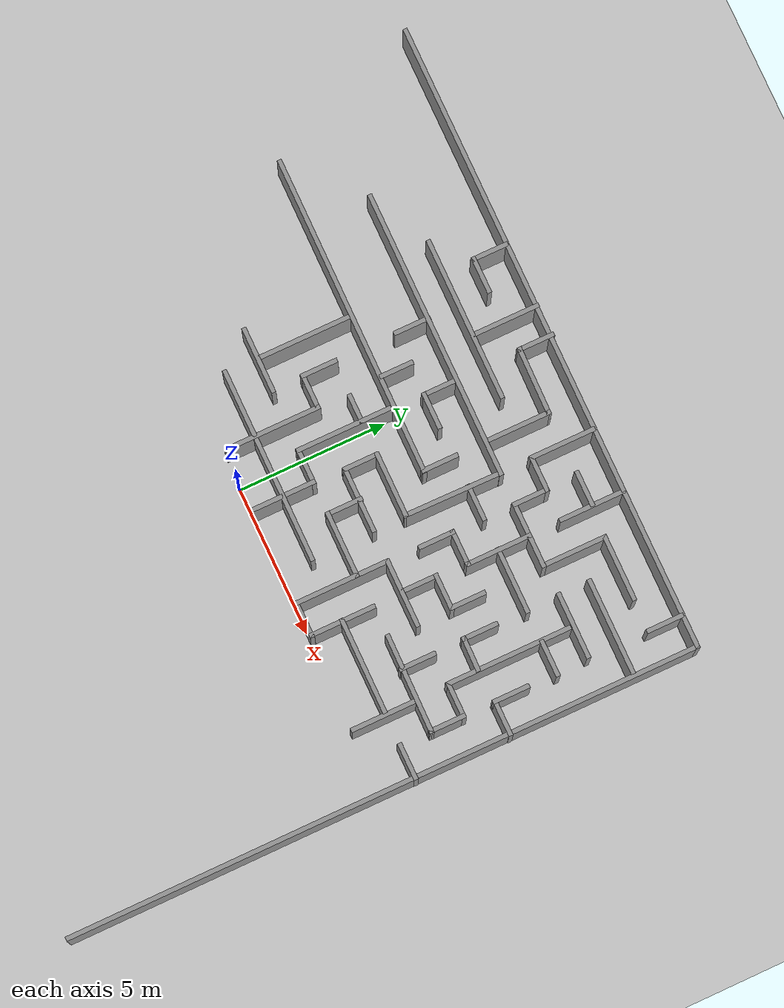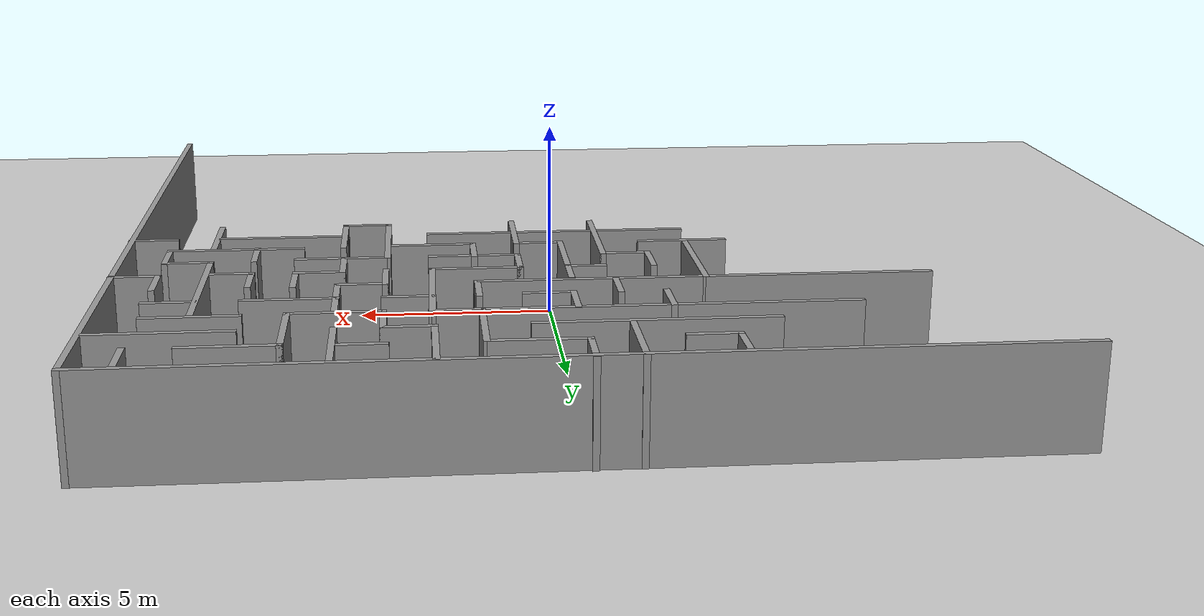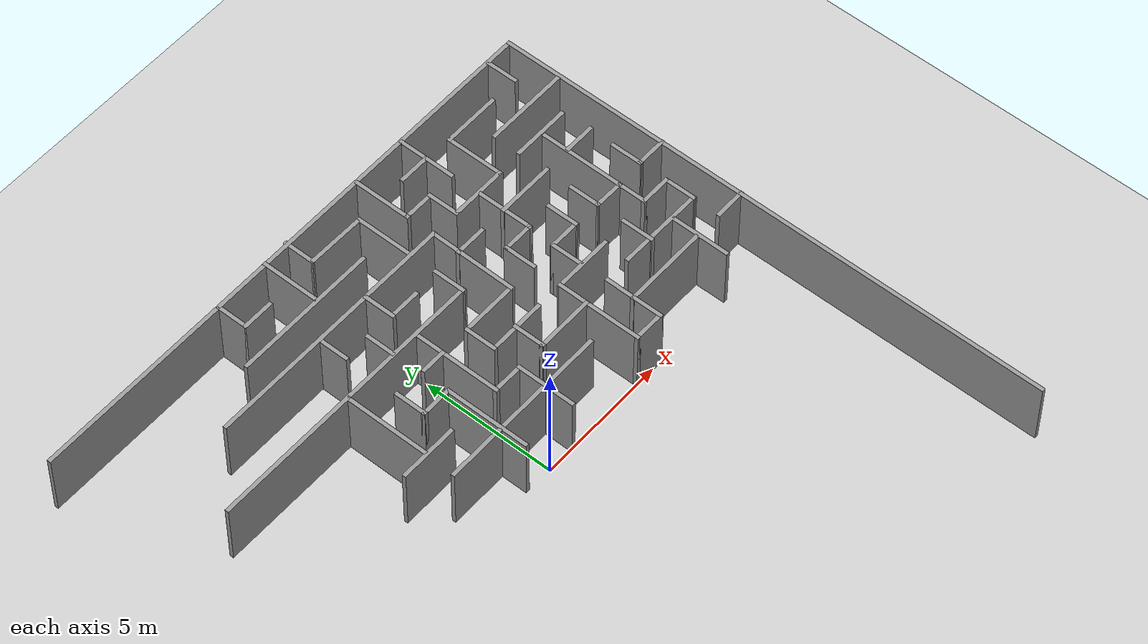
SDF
<sdf version="1.7">
 <world name="default">
  <model name="ground_plane">
   <static>1</static>
   <link name="link">
    <collision name="collision">
     <geometry><plane><normal>0 0 1</normal><size>100 100</size></plane></geometry>
     <surface><friction><ode><mu>100</mu><mu2>50</mu2></ode></friction></surface>
    </collision>
    <visual name="visual">
     <cast_shadows>0</cast_shadows>
     <geometry><plane><normal>0 0 1</normal><size>100 100</size></plane></geometry>
     <material>
      <script><uri>file://media/materials/scripts/gazebo.material</uri><name>Gazebo/Grey</name></script>
     </material>
    </visual>
   </link>
  </model>
  <model name="Maze_ej4">
   <pose>-0.00055 0.06164 0 0 -0 0</pose>
   <link name="Wall_15">
    <collision name="Wall_15_Collision">
     <geometry><box><size>21.5 0.15 2.5</size></box></geometry>
     <pose>0 0 1.25 0 -0 0</pose>
    </collision>
    <visual name="Wall_15_Visual">
     <pose>0 0 1.25 0 -0 0</pose>
     <geometry><box><size>21.5 0.15 2.5</size></box></geometry>
     <material>
      <script><uri>file://media/materials/scripts/gazebo.material</uri><name>Gazebo/Grey</name></script>
      <ambient>1 1 1 1</ambient>
     </material>
     <meta><layer>0</layer></meta>
    </visual>
    <pose>10.6667 -0.028895 0 0 -0 1.5708</pose>
   </link>
   <link name="Wall_16">
    <collision name="Wall_16_Collision">
     <geometry><box><size>21.5 0.15 2.5</size></box></geometry>
     <pose>0 0 1.25 0 -0 0</pose>
    </collision>
    <visual name="Wall_16_Visual">
     <pose>0 0 1.25 0 -0 0</pose>
     <geometry><box><size>21.5 0.15 2.5</size></box></geometry>
     <material>
      <script><uri>file://media/materials/scripts/gazebo.material</uri><name>Gazebo/Grey</name></script>
      <ambient>1 1 1 1</ambient>
     </material>
     <meta><layer>0</layer></meta>
    </visual>
    <pose>-0.008328 10.6461 0 0 -0 3.14159</pose>
   </link>
   <link name="Wall_215">
    <collision name="Wall_215_Collision">
     <geometry><box><size>6.57519 0.15 2.5</size></box></geometry>
     <pose>0 0 1.25 0 -0 0</pose>
    </collision>
    <visual name="Wall_215_Visual">
     <pose>0 0 1.25 0 -0 0</pose>
     <geometry><box><size>6.57519 0.15 2.5</size></box></geometry>
     <material>
      <script><uri>file://media/materials/scripts/gazebo.material</uri><name>Gazebo/Grey</name></script>
      <ambient>1 1 1 1</ambient>
     </material>
     <meta><layer>0</layer></meta>
    </visual>
    <pose>-0.029528 0.994018 0 0 -0 0</pose>
   </link>
   <link name="Wall_224">
    <collision name="Wall_224_Collision">
     <geometry><box><size>1.25 0.15 2.5</size></box></geometry>
     <pose>0 0 1.25 0 -0 0</pose>
    </collision>
    <visual name="Wall_224_Visual">
     <pose>0 0 1.25 0 -0 0</pose>
     <geometry><box><size>1.25 0.15 2.5</size></box></geometry>
     <material>
      <script><uri>file://media/materials/scripts/gazebo.material</uri><name>Gazebo/Grey</name></script>
      <ambient>1 1 1 1</ambient>
     </material>
     <meta><layer>0</layer></meta>
    </visual>
    <pose>-2.1319 3.69402 0 0 -0 -1.5708</pose>
   </link>
   <link name="Wall_225">
    <collision name="Wall_225_Collision">
     <geometry><box><size>1.25 0.15 2.5</size></box></geometry>
     <pose>0 0 1.25 0 -0 0</pose>
    </collision>
    <visual name="Wall_225_Visual">
     <pose>0 0 1.25 0 -0 0</pose>
     <geometry><box><size>1.25 0.15 2.5</size></box></geometry>
     <material>
      <script><uri>file://media/materials/scripts/gazebo.material</uri><name>Gazebo/Grey</name></script>
      <ambient>1 1 1 1</ambient>
     </material>
     <meta><layer>0</layer></meta>
    </visual>
    <pose>-1.5819 3.14402 0 0 -0 0</pose>
   </link>
   <link name="Wall_226">
    <collision name="Wall_226_Collision">
     <geometry><box><size>3.25 0.15 2.5</size></box></geometry>
     <pose>0 0 1.25 0 -0 0</pose>
    </collision>
    <visual name="Wall_226_Visual">
     <pose>0 0 1.25 0 -0 0</pose>
     <geometry><box><size>3.25 0.15 2.5</size></box></geometry>
     <material>
      <script><uri>file://media/materials/scripts/gazebo.material</uri><name>Gazebo/Grey</name></script>
      <ambient>1 1 1 1</ambient>
     </material>
     <meta><layer>0</layer></meta>
    </visual>
    <pose>-1.0319 1.59402 0 0 -0 -1.5708</pose>
   </link>
   <link name="Wall_228">
    <collision name="Wall_228_Collision">
     <geometry><box><size>2.25 0.15 2.5</size></box></geometry>
     <pose>0 0 1.25 0 -0 0</pose>
    </collision>
    <visual name="Wall_228_Visual">
     <pose>0 0 1.25 0 -0 0</pose>
     <geometry><box><size>2.25 0.15 2.5</size></box></geometry>
     <material>
      <script><uri>file://media/materials/scripts/gazebo.material</uri><name>Gazebo/Grey</name></script>
      <ambient>1 1 1 1</ambient>
     </material>
     <meta><layer>0</layer></meta>
    </visual>
    <pose>1.03065 0.98723 0 0 -0 1.5708</pose>
   </link>
   <link name="Wall_229">
    <collision name="Wall_229_Collision">
     <geometry><box><size>1.25 0.15 2.5</size></box></geometry>
     <pose>0 0 1.25 0 -0 0</pose>
    </collision>
    <visual name="Wall_229_Visual">
     <pose>0 0 1.25 0 -0 0</pose>
     <geometry><box><size>1.25 0.15 2.5</size></box></geometry>
     <material>
      <script><uri>file://media/materials/scripts/gazebo.material</uri><name>Gazebo/Grey</name></script>
      <ambient>1 1 1 1</ambient>
     </material>
     <meta><layer>0</layer></meta>
    </visual>
    <pose>0.480653 2.03723 0 0 -0 3.14159</pose>
   </link>
   <link name="Wall_230">
    <collision name="Wall_230_Collision">
     <geometry><box><size>3.25 0.15 2.5</size></box></geometry>
     <pose>0 0 1.25 0 -0 0</pose>
    </collision>
    <visual name="Wall_230_Visual">
     <pose>0 0 1.25 0 -0 0</pose>
     <geometry><box><size>3.25 0.15 2.5</size></box></geometry>
     <material>
      <script><uri>file://media/materials/scripts/gazebo.material</uri><name>Gazebo/Grey</name></script>
      <ambient>1 1 1 1</ambient>
     </material>
     <meta><layer>0</layer></meta>
    </visual>
    <pose>-0.069347 3.58723 0 0 -0 1.5708</pose>
   </link>
   <link name="Wall_232">
    <collision name="Wall_232_Collision">
     <geometry><box><size>1.25 0.15 2.5</size></box></geometry>
     <pose>0 0 1.25 0 -0 0</pose>
    </collision>
    <visual name="Wall_232_Visual">
     <pose>0 0 1.25 0 -0 0</pose>
     <geometry><box><size>1.25 0.15 2.5</size></box></geometry>
     <material>
      <script><uri>file://media/materials/scripts/gazebo.material</uri><name>Gazebo/Grey</name></script>
      <ambient>1 1 1 1</ambient>
     </material>
     <meta><layer>0</layer></meta>
    </visual>
    <pose>9.58066 4.80647 0 0 -0 -1.5708</pose>
   </link>
   <link name="Wall_233">
    <collision name="Wall_233_Collision">
     <geometry><box><size>1.25 0.15 2.5</size></box></geometry>
     <pose>0 0 1.25 0 -0 0</pose>
    </collision>
    <visual name="Wall_233_Visual">
     <pose>0 0 1.25 0 -0 0</pose>
     <geometry><box><size>1.25 0.15 2.5</size></box></geometry>
     <material>
      <script><uri>file://media/materials/scripts/gazebo.material</uri><name>Gazebo/Grey</name></script>
      <ambient>1 1 1 1</ambient>
     </material>
     <meta><layer>0</layer></meta>
    </visual>
    <pose>10.1307 4.25647 0 0 -0 0</pose>
   </link>
   <link name="Wall_235">
    <collision name="Wall_235_Collision">
     <geometry><box><size>1.25 0.15 2.5</size></box></geometry>
     <pose>0 0 1.25 0 -0 0</pose>
    </collision>
    <visual name="Wall_235_Visual">
     <pose>0 0 1.25 0 -0 0</pose>
     <geometry><box><size>1.25 0.15 2.5</size></box></geometry>
     <material>
      <script><uri>file://media/materials/scripts/gazebo.material</uri><name>Gazebo/Grey</name></script>
      <ambient>1 1 1 1</ambient>
     </material>
     <meta><layer>0</layer></meta>
    </visual>
    <pose>10.1307 1.03379 0 0 -0 0</pose>
   </link>
   <link name="Wall_237">
    <collision name="Wall_237_Collision">
     <geometry><box><size>3.25 0.15 2.5</size></box></geometry>
     <pose>0 0 1.25 0 -0 0</pose>
    </collision>
    <visual name="Wall_237_Visual">
     <pose>0 0 1.25 0 -0 0</pose>
     <geometry><box><size>3.25 0.15 2.5</size></box></geometry>
     <material>
      <script><uri>file://media/materials/scripts/gazebo.material</uri><name>Gazebo/Grey</name></script>
      <ambient>1 1 1 1</ambient>
     </material>
     <meta><layer>0</layer></meta>
    </visual>
    <pose>-3.21257 3.7588 0 0 -0 -1.5708</pose>
   </link>
   <link name="Wall_239">
    <collision name="Wall_239_Collision">
     <geometry><box><size>2.25 0.15 2.5</size></box></geometry>
     <pose>0 0 1.25 0 -0 0</pose>
    </collision>
    <visual name="Wall_239_Visual">
     <pose>0 0 1.25 0 -0 0</pose>
     <geometry><box><size>2.25 0.15 2.5</size></box></geometry>
     <material>
      <script><uri>file://media/materials/scripts/gazebo.material</uri><name>Gazebo/Grey</name></script>
      <ambient>1 1 1 1</ambient>
     </material>
     <meta><layer>0</layer></meta>
    </visual>
    <pose>-3.15011 2.09857 0 0 -0 3.14159</pose>
   </link>
   <link name="Wall_247">
    <collision name="Wall_247_Collision">
     <geometry><box><size>3.25 0.15 2.5</size></box></geometry>
     <pose>0 0 1.25 0 -0 0</pose>
    </collision>
    <visual name="Wall_247_Visual">
     <pose>0 0 1.25 0 -0 0</pose>
     <geometry><box><size>3.25 0.15 2.5</size></box></geometry>
     <material>
      <script><uri>file://media/materials/scripts/gazebo.material</uri><name>Gazebo/Grey</name></script>
      <ambient>1 1 1 1</ambient>
     </material>
     <meta><layer>0</layer></meta>
    </visual>
    <pose>6.87155 1.03379 0 0 -0 0</pose>
   </link>
   <link name="Wall_252">
    <collision name="Wall_252_Collision">
     <geometry><box><size>10.8613 0.15 2.5</size></box></geometry>
     <pose>0 0 1.25 0 -0 0</pose>
    </collision>
    <visual name="Wall_252_Visual">
     <pose>0 0 1.25 0 -0 0</pose>
     <geometry><box><size>10.8613 0.15 2.5</size></box></geometry>
     <material>
      <script><uri>file://media/materials/scripts/gazebo.material</uri><name>Gazebo/Grey</name></script>
      <ambient>1 1 1 1</ambient>
     </material>
     <meta><layer>0</layer></meta>
    </visual>
    <pose>-3.19672 5.30879 0 0 -0 -0.002967</pose>
   </link>
   <link name="Wall_253">
    <collision name="Wall_253_Collision">
     <geometry><box><size>1.25 0.15 2.5</size></box></geometry>
     <pose>0 0 1.25 0 -0 0</pose>
    </collision>
    <visual name="Wall_253_Visual">
     <pose>0 0 1.25 0 -0 0</pose>
     <geometry><box><size>1.25 0.15 2.5</size></box></geometry>
     <material>
      <script><uri>file://media/materials/scripts/gazebo.material</uri><name>Gazebo/Grey</name></script>
      <ambient>1 1 1 1</ambient>
     </material>
     <meta><layer>0</layer></meta>
    </visual>
    <pose>2.14301 5.8429 0 0 -0 1.5708</pose>
   </link>
   <link name="Wall_255">
    <collision name="Wall_255_Collision">
     <geometry><box><size>3.36038 0.15 2.5</size></box></geometry>
     <pose>0 0 1.25 0 -0 0</pose>
    </collision>
    <visual name="Wall_255_Visual">
     <pose>0 0 1.25 0 -0 0</pose>
     <geometry><box><size>3.36038 0.15 2.5</size></box></geometry>
     <material>
      <script><uri>file://media/materials/scripts/gazebo.material</uri><name>Gazebo/Grey</name></script>
      <ambient>1 1 1 1</ambient>
     </material>
     <meta><layer>0</layer></meta>
    </visual>
    <pose>7.97555 2.09857 0 0 -0 -0.009901</pose>
   </link>
   <link name="Wall_256">
    <collision name="Wall_256_Collision">
     <geometry><box><size>1.25 0.15 2.5</size></box></geometry>
     <pose>0 0 1.25 0 -0 0</pose>
    </collision>
    <visual name="Wall_256_Visual">
     <pose>0 0 1.25 0 -0 0</pose>
     <geometry><box><size>1.25 0.15 2.5</size></box></geometry>
     <material>
      <script><uri>file://media/materials/scripts/gazebo.material</uri><name>Gazebo/Grey</name></script>
      <ambient>1 1 1 1</ambient>
     </material>
     <meta><layer>0</layer></meta>
    </visual>
    <pose>9.58066 2.63268 0 0 -0 1.5708</pose>
   </link>
   <link name="Wall_257">
    <collision name="Wall_257_Collision">
     <geometry><box><size>1.25 0.15 2.5</size></box></geometry>
     <pose>0 0 1.25 0 -0 0</pose>
    </collision>
    <visual name="Wall_257_Visual">
     <pose>0 0 1.25 0 -0 0</pose>
     <geometry><box><size>1.25 0.15 2.5</size></box></geometry>
     <material>
      <script><uri>file://media/materials/scripts/gazebo.material</uri><name>Gazebo/Grey</name></script>
      <ambient>1 1 1 1</ambient>
     </material>
     <meta><layer>0</layer></meta>
    </visual>
    <pose>9.03066 3.18268 0 0 -0 3.14159</pose>
   </link>
   <link name="Wall_258">
    <collision name="Wall_258_Collision">
     <geometry><box><size>4.25 0.15 2.5</size></box></geometry>
     <pose>0 0 1.25 0 -0 0</pose>
    </collision>
    <visual name="Wall_258_Visual">
     <pose>0 0 1.25 0 -0 0</pose>
     <geometry><box><size>4.25 0.15 2.5</size></box></geometry>
     <material>
      <script><uri>file://media/materials/scripts/gazebo.material</uri><name>Gazebo/Grey</name></script>
      <ambient>1 1 1 1</ambient>
     </material>
     <meta><layer>0</layer></meta>
    </visual>
    <pose>8.48066 5.23268 0 0 -0 1.5708</pose>
   </link>
   <link name="Wall_260">
    <collision name="Wall_260_Collision">
     <geometry><box><size>1.25 0.15 2.5</size></box></geometry>
     <pose>0 0 1.25 0 -0 0</pose>
    </collision>
    <visual name="Wall_260_Visual">
     <pose>0 0 1.25 0 -0 0</pose>
     <geometry><box><size>1.25 0.15 2.5</size></box></geometry>
     <material>
      <script><uri>file://media/materials/scripts/gazebo.material</uri><name>Gazebo/Grey</name></script>
      <ambient>1 1 1 1</ambient>
     </material>
     <meta><layer>0</layer></meta>
    </visual>
    <pose>9.07834 6.35768 0 0 -0 3.14159</pose>
   </link>
   <link name="Wall_262">
    <collision name="Wall_262_Collision">
     <geometry><box><size>2.25 0.15 2.5</size></box></geometry>
     <pose>0 0 1.25 0 -0 0</pose>
    </collision>
    <visual name="Wall_262_Visual">
     <pose>0 0 1.25 0 -0 0</pose>
     <geometry><box><size>2.25 0.15 2.5</size></box></geometry>
     <material>
      <script><uri>file://media/materials/scripts/gazebo.material</uri><name>Gazebo/Grey</name></script>
      <ambient>1 1 1 1</ambient>
     </material>
     <meta><layer>0</layer></meta>
    </visual>
    <pose>8.46932 7.45424 0 0 -0 0</pose>
   </link>
   <link name="Wall_264">
    <collision name="Wall_264_Collision">
     <geometry><box><size>2.25 0.15 2.5</size></box></geometry>
     <pose>0 0 1.25 0 -0 0</pose>
    </collision>
    <visual name="Wall_264_Visual">
     <pose>0 0 1.25 0 -0 0</pose>
     <geometry><box><size>2.25 0.15 2.5</size></box></geometry>
     <material>
      <script><uri>file://media/materials/scripts/gazebo.material</uri><name>Gazebo/Grey</name></script>
      <ambient>1 1 1 1</ambient>
     </material>
     <meta><layer>0</layer></meta>
    </visual>
    <pose>8.53177 0.969109 0 0 -0 -1.5708</pose>
   </link>
   <link name="Wall_266">
    <collision name="Wall_266_Collision">
     <geometry><box><size>1.25 0.15 2.5</size></box></geometry>
     <pose>0 0 1.25 0 -0 0</pose>
    </collision>
    <visual name="Wall_266_Visual">
     <pose>0 0 1.25 0 -0 0</pose>
     <geometry><box><size>1.25 0.15 2.5</size></box></geometry>
     <material>
      <script><uri>file://media/materials/scripts/gazebo.material</uri><name>Gazebo/Grey</name></script>
      <ambient>1 1 1 1</ambient>
     </material>
     <meta><layer>0</layer></meta>
    </visual>
    <pose>7.4511 2.61335 0 0 -0 -1.5708</pose>
   </link>
   <link name="Wall_268">
    <collision name="Wall_268_Collision">
     <geometry><box><size>2.25 0.15 2.5</size></box></geometry>
     <pose>0 0 1.25 0 -0 0</pose>
    </collision>
    <visual name="Wall_268_Visual">
     <pose>0 0 1.25 0 -0 0</pose>
     <geometry><box><size>2.25 0.15 2.5</size></box></geometry>
     <material>
      <script><uri>file://media/materials/scripts/gazebo.material</uri><name>Gazebo/Grey</name></script>
      <ambient>1 1 1 1</ambient>
     </material>
     <meta><layer>0</layer></meta>
    </visual>
    <pose>5.33744 1.03268 0 0 -0 -1.5708</pose>
   </link>
   <link name="Wall_269">
    <collision name="Wall_269_Collision">
     <geometry><box><size>1.25 0.15 2.5</size></box></geometry>
     <pose>0 0 1.25 0 -0 0</pose>
    </collision>
    <visual name="Wall_269_Visual">
     <pose>0 0 1.25 0 -0 0</pose>
     <geometry><box><size>1.25 0.15 2.5</size></box></geometry>
     <material>
      <script><uri>file://media/materials/scripts/gazebo.material</uri><name>Gazebo/Grey</name></script>
      <ambient>1 1 1 1</ambient>
     </material>
     <meta><layer>0</layer></meta>
    </visual>
    <pose>4.78744 -0.017322 0 0 -0 3.14159</pose>
   </link>
   <link name="Wall_270">
    <collision name="Wall_270_Collision">
     <geometry><box><size>3.25 0.15 2.5</size></box></geometry>
     <pose>0 0 1.25 0 -0 0</pose>
    </collision>
    <visual name="Wall_270_Visual">
     <pose>0 0 1.25 0 -0 0</pose>
     <geometry><box><size>3.25 0.15 2.5</size></box></geometry>
     <material>
      <script><uri>file://media/materials/scripts/gazebo.material</uri><name>Gazebo/Grey</name></script>
      <ambient>1 1 1 1</ambient>
     </material>
     <meta><layer>0</layer></meta>
    </visual>
    <pose>4.23744 1.53268 0 0 -0 1.5708</pose>
   </link>
   <link name="Wall_271">
    <collision name="Wall_271_Collision">
     <geometry><box><size>2.33067 0.15 2.5</size></box></geometry>
     <pose>0 0 1.25 0 -0 0</pose>
    </collision>
    <visual name="Wall_271_Visual">
     <pose>0 0 1.25 0 -0 0</pose>
     <geometry><box><size>2.33067 0.15 2.5</size></box></geometry>
     <material>
      <script><uri>file://media/materials/scripts/gazebo.material</uri><name>Gazebo/Grey</name></script>
      <ambient>1 1 1 1</ambient>
     </material>
     <meta><layer>0</layer></meta>
    </visual>
    <pose>5.32778 3.08328 0 0 -0 0.000554</pose>
   </link>
   <link name="Wall_275">
    <collision name="Wall_275_Collision">
     <geometry><box><size>1.25 0.15 2.5</size></box></geometry>
     <pose>0 0 1.25 0 -0 0</pose>
    </collision>
    <visual name="Wall_275_Visual">
     <pose>0 0 1.25 0 -0 0</pose>
     <geometry><box><size>1.25 0.15 2.5</size></box></geometry>
     <material>
      <script><uri>file://media/materials/scripts/gazebo.material</uri><name>Gazebo/Grey</name></script>
      <ambient>1 1 1 1</ambient>
     </material>
     <meta><layer>0</layer></meta>
    </visual>
    <pose>6.38633 4.80647 0 0 -0 -1.5708</pose>
   </link>
   <link name="Wall_276">
    <collision name="Wall_276_Collision">
     <geometry><box><size>1.25 0.15 2.5</size></box></geometry>
     <pose>0 0 1.25 0 -0 0</pose>
    </collision>
    <visual name="Wall_276_Visual">
     <pose>0 0 1.25 0 -0 0</pose>
     <geometry><box><size>1.25 0.15 2.5</size></box></geometry>
     <material>
      <script><uri>file://media/materials/scripts/gazebo.material</uri><name>Gazebo/Grey</name></script>
      <ambient>1 1 1 1</ambient>
     </material>
     <meta><layer>0</layer></meta>
    </visual>
    <pose>5.83633 4.25647 0 0 -0 3.14159</pose>
   </link>
   <link name="Wall_277">
    <collision name="Wall_277_Collision">
     <geometry><box><size>1.25 0.15 2.5</size></box></geometry>
     <pose>0 0 1.25 0 -0 0</pose>
    </collision>
    <visual name="Wall_277_Visual">
     <pose>0 0 1.25 0 -0 0</pose>
     <geometry><box><size>1.25 0.15 2.5</size></box></geometry>
     <material>
      <script><uri>file://media/materials/scripts/gazebo.material</uri><name>Gazebo/Grey</name></script>
      <ambient>1 1 1 1</ambient>
     </material>
     <meta><layer>0</layer></meta>
    </visual>
    <pose>5.28633 3.70647 0 0 -0 -1.5708</pose>
   </link>
   <link name="Wall_279">
    <collision name="Wall_279_Collision">
     <geometry><box><size>1.23067 0.15 2.5</size></box></geometry>
     <pose>0 0 1.25 0 -0 0</pose>
    </collision>
    <visual name="Wall_279_Visual">
     <pose>0 0 1.25 0 -0 0</pose>
     <geometry><box><size>1.23067 0.15 2.5</size></box></geometry>
     <material>
      <script><uri>file://media/materials/scripts/gazebo.material</uri><name>Gazebo/Grey</name></script>
      <ambient>1 1 1 1</ambient>
     </material>
     <meta><layer>0</layer></meta>
    </visual>
    <pose>7.41932 4.75257 0 0 -0 -1.5708</pose>
   </link>
   <link name="Wall_280">
    <collision name="Wall_280_Collision">
     <geometry><box><size>1.18661 0.15 2.5</size></box></geometry>
     <pose>0 0 1.25 0 -0 0</pose>
    </collision>
    <visual name="Wall_280_Visual">
     <pose>0 0 1.25 0 -0 0</pose>
     <geometry><box><size>1.18661 0.15 2.5</size></box></geometry>
     <material>
      <script><uri>file://media/materials/scripts/gazebo.material</uri><name>Gazebo/Grey</name></script>
      <ambient>1 1 1 1</ambient>
     </material>
     <meta><layer>0</layer></meta>
    </visual>
    <pose>7.93753 4.20257 0 0 -0 -0.018648</pose>
   </link>
   <link name="Wall_282">
    <collision name="Wall_282_Collision">
     <geometry><box><size>3.3768 0.15 2.5</size></box></geometry>
     <pose>0 0 1.25 0 -0 0</pose>
    </collision>
    <visual name="Wall_282_Visual">
     <pose>0 0 1.25 0 -0 0</pose>
     <geometry><box><size>3.3768 0.15 2.5</size></box></geometry>
     <material>
      <script><uri>file://media/materials/scripts/gazebo.material</uri><name>Gazebo/Grey</name></script>
      <ambient>1 1 1 1</ambient>
     </material>
     <meta><layer>0</layer></meta>
    </visual>
    <pose>3.19597 5.8094 0 0 -0 -1.58311</pose>
   </link>
   <link name="Wall_283">
    <collision name="Wall_283_Collision">
     <geometry><box><size>2.25 0.15 2.5</size></box></geometry>
     <pose>0 0 1.25 0 -0 0</pose>
    </collision>
    <visual name="Wall_283_Visual">
     <pose>0 0 1.25 0 -0 0</pose>
     <geometry><box><size>2.25 0.15 2.5</size></box></geometry>
     <material>
      <script><uri>file://media/materials/scripts/gazebo.material</uri><name>Gazebo/Grey</name></script>
      <ambient>1 1 1 1</ambient>
     </material>
     <meta><layer>0</layer></meta>
    </visual>
    <pose>2.1261 4.19634 0 0 -0 3.14159</pose>
   </link>
   <link name="Wall_284">
    <collision name="Wall_284_Collision">
     <geometry><box><size>1.25 0.15 2.5</size></box></geometry>
     <pose>0 0 1.25 0 -0 0</pose>
    </collision>
    <visual name="Wall_284_Visual">
     <pose>0 0 1.25 0 -0 0</pose>
     <geometry><box><size>1.25 0.15 2.5</size></box></geometry>
     <material>
      <script><uri>file://media/materials/scripts/gazebo.material</uri><name>Gazebo/Grey</name></script>
      <ambient>1 1 1 1</ambient>
     </material>
     <meta><layer>0</layer></meta>
    </visual>
    <pose>1.0761 3.64634 0 0 -0 -1.5708</pose>
   </link>
   <link name="Wall_285">
    <collision name="Wall_285_Collision">
     <geometry><box><size>2.25 0.15 2.5</size></box></geometry>
     <pose>0 0 1.25 0 -0 0</pose>
    </collision>
    <visual name="Wall_285_Visual">
     <pose>0 0 1.25 0 -0 0</pose>
     <geometry><box><size>2.25 0.15 2.5</size></box></geometry>
     <material>
      <script><uri>file://media/materials/scripts/gazebo.material</uri><name>Gazebo/Grey</name></script>
      <ambient>1 1 1 1</ambient>
     </material>
     <meta><layer>0</layer></meta>
    </visual>
    <pose>2.1261 3.09634 0 0 -0 0</pose>
   </link>
   <link name="Wall_287">
    <collision name="Wall_287_Collision">
     <geometry><box><size>1.25 0.15 2.5</size></box></geometry>
     <pose>0 0 1.25 0 -0 0</pose>
    </collision>
    <visual name="Wall_287_Visual">
     <pose>0 0 1.25 0 -0 0</pose>
     <geometry><box><size>1.25 0.15 2.5</size></box></geometry>
     <material>
      <script><uri>file://media/materials/scripts/gazebo.material</uri><name>Gazebo/Grey</name></script>
      <ambient>1 1 1 1</ambient>
     </material>
     <meta><layer>0</layer></meta>
    </visual>
    <pose>2.12722 2.58156 0 0 -0 -1.5708</pose>
   </link>
   <link name="Wall_288">
    <collision name="Wall_288_Collision">
     <geometry><box><size>2.25 0.15 2.5</size></box></geometry>
     <pose>0 0 1.25 0 -0 0</pose>
    </collision>
    <visual name="Wall_288_Visual">
     <pose>0 0 1.25 0 -0 0</pose>
     <geometry><box><size>2.25 0.15 2.5</size></box></geometry>
     <material>
      <script><uri>file://media/materials/scripts/gazebo.material</uri><name>Gazebo/Grey</name></script>
      <ambient>1 1 1 1</ambient>
     </material>
     <meta><layer>0</layer></meta>
    </visual>
    <pose>3.17722 2.03156 0 0 -0 0</pose>
   </link>
   <link name="Wall_291">
    <collision name="Wall_291_Collision">
     <geometry><box><size>1 0.15 2.5</size></box></geometry>
     <pose>0 0 1.25 0 -0 0</pose>
    </collision>
    <visual name="Wall_291_Visual">
     <pose>0 0 1.25 0 -0 0</pose>
     <geometry><box><size>1 0.15 2.5</size></box></geometry>
     <material>
      <script><uri>file://media/materials/scripts/gazebo.material</uri><name>Gazebo/Grey</name></script>
      <ambient>1 1 1 1</ambient>
     </material>
     <meta><layer>0</layer></meta>
    </visual>
    <pose>-0.503363 4.19634 0 0 -0 0</pose>
   </link>
   <link name="Wall_293">
    <collision name="Wall_293_Collision">
     <geometry><box><size>1.15121 0.15 2.5</size></box></geometry>
     <pose>0 0 1.25 0 -0 0</pose>
    </collision>
    <visual name="Wall_293_Visual">
     <pose>0 0 1.25 0 -0 0</pose>
     <geometry><box><size>1.15121 0.15 2.5</size></box></geometry>
     <material>
      <script><uri>file://media/materials/scripts/gazebo.material</uri><name>Gazebo/Grey</name></script>
      <ambient>1 1 1 1</ambient>
     </material>
     <meta><layer>0</layer></meta>
    </visual>
    <pose>-1.08301 5.85708 0 0 -0 -1.5708</pose>
   </link>
   <link name="Wall_317">
    <collision name="Wall_317_Collision">
     <geometry><box><size>5.5 0.15 2.5</size></box></geometry>
     <pose>0 0 1.25 0 -0 0</pose>
    </collision>
    <visual name="Wall_317_Visual">
     <pose>0 0 1.25 0 -0 0</pose>
     <geometry><box><size>5.5 0.15 2.5</size></box></geometry>
     <material>
      <script><uri>file://media/materials/scripts/gazebo.material</uri><name>Gazebo/Grey</name></script>
      <ambient>1 1 1 1</ambient>
     </material>
     <meta><layer>0</layer></meta>
    </visual>
    <pose>-1.61824 8.47134 0 0 -0 0</pose>
   </link>
   <link name="Wall_835">
    <collision name="Wall_835_Collision">
     <geometry><box><size>2.25 0.15 2.5</size></box></geometry>
     <pose>0 0 1.25 0 -0 0</pose>
    </collision>
    <visual name="Wall_835_Visual">
     <pose>0 0 1.25 0 -0 0</pose>
     <geometry><box><size>2.25 0.15 2.5</size></box></geometry>
     <material>
      <script><uri>file://media/materials/scripts/gazebo.material</uri><name>Gazebo/Grey</name></script>
      <ambient>1 1 1 1</ambient>
     </material>
     <meta><layer>0</layer></meta>
    </visual>
    <pose>-1.06235 9.61459 0 0 -0 -1.5708</pose>
   </link>
   <link name="Wall_843">
    <collision name="Wall_843_Collision">
     <geometry><box><size>9.75 0.15 2.5</size></box></geometry>
     <pose>0 0 1.25 0 -0 0</pose>
    </collision>
    <visual name="Wall_843_Visual">
     <pose>0 0 1.25 0 -0 0</pose>
     <geometry><box><size>9.75 0.15 2.5</size></box></geometry>
     <material>
      <script><uri>file://media/materials/scripts/gazebo.material</uri><name>Gazebo/Grey</name></script>
      <ambient>1 1 1 1</ambient>
     </material>
     <meta><layer>0</layer></meta>
    </visual>
    <pose>-1.57092 7.42246 0 0 -0 3.14159</pose>
   </link>
   <link name="Wall_852">
    <collision name="Wall_852_Collision">
     <geometry><box><size>1.25 0.15 2.5</size></box></geometry>
     <pose>0 0 1.25 0 -0 0</pose>
    </collision>
    <visual name="Wall_852_Visual">
     <pose>0 0 1.25 0 -0 0</pose>
     <geometry><box><size>1.25 0.15 2.5</size></box></geometry>
     <material>
      <script><uri>file://media/materials/scripts/gazebo.material</uri><name>Gazebo/Grey</name></script>
      <ambient>1 1 1 1</ambient>
     </material>
     <meta><layer>0</layer></meta>
    </visual>
    <pose>-2.13408 6.88484 0 0 -0 -1.5708</pose>
   </link>
   <link name="Wall_854">
    <collision name="Wall_854_Collision">
     <geometry><box><size>1.25 0.15 2.5</size></box></geometry>
     <pose>0 0 1.25 0 -0 0</pose>
    </collision>
    <visual name="Wall_854_Visual">
     <pose>0 0 1.25 0 -0 0</pose>
     <geometry><box><size>1.25 0.15 2.5</size></box></geometry>
     <material>
      <script><uri>file://media/materials/scripts/gazebo.material</uri><name>Gazebo/Grey</name></script>
      <ambient>1 1 1 1</ambient>
     </material>
     <meta><layer>0</layer></meta>
    </visual>
    <pose>-0.00188 6.85835 0 0 -0 -1.5708</pose>
   </link>
   <link name="Wall_855">
    <collision name="Wall_855_Collision">
     <geometry><box><size>1.25 0.15 2.5</size></box></geometry>
     <pose>0 0 1.25 0 -0 0</pose>
    </collision>
    <visual name="Wall_855_Visual">
     <pose>0 0 1.25 0 -0 0</pose>
     <geometry><box><size>1.25 0.15 2.5</size></box></geometry>
     <material>
      <script><uri>file://media/materials/scripts/gazebo.material</uri><name>Gazebo/Grey</name></script>
      <ambient>1 1 1 1</ambient>
     </material>
     <meta><layer>0</layer></meta>
    </visual>
    <pose>0.54812 6.30835 0 0 -0 0</pose>
   </link>
   <link name="Wall_857">
    <collision name="Wall_857_Collision">
     <geometry><box><size>1.25 0.15 2.5</size></box></geometry>
     <pose>0 0 1.25 0 -0 0</pose>
    </collision>
    <visual name="Wall_857_Visual">
     <pose>0 0 1.25 0 -0 0</pose>
     <geometry><box><size>1.25 0.15 2.5</size></box></geometry>
     <material>
      <script><uri>file://media/materials/scripts/gazebo.material</uri><name>Gazebo/Grey</name></script>
      <ambient>1 1 1 1</ambient>
     </material>
     <meta><layer>0</layer></meta>
    </visual>
    <pose>3.73981 6.34887 0 0 -0 0</pose>
   </link>
   <link name="Wall_860">
    <collision name="Wall_860_Collision">
     <geometry><box><size>1.25 0.15 2.5</size></box></geometry>
     <pose>0 0 1.25 0 -0 0</pose>
    </collision>
    <visual name="Wall_860_Visual">
     <pose>0 0 1.25 0 -0 0</pose>
     <geometry><box><size>1.25 0.15 2.5</size></box></geometry>
     <material>
      <script><uri>file://media/materials/scripts/gazebo.material</uri><name>Gazebo/Grey</name></script>
      <ambient>1 1 1 1</ambient>
     </material>
     <meta><layer>0</layer></meta>
    </visual>
    <pose>-3.22005 10.0633 0 0 -0 -1.5708</pose>
   </link>
   <link name="Wall_861">
    <collision name="Wall_861_Collision">
     <geometry><box><size>1.25 0.15 2.5</size></box></geometry>
     <pose>0 0 1.25 0 -0 0</pose>
    </collision>
    <visual name="Wall_861_Visual">
     <pose>0 0 1.25 0 -0 0</pose>
     <geometry><box><size>1.25 0.15 2.5</size></box></geometry>
     <material>
      <script><uri>file://media/materials/scripts/gazebo.material</uri><name>Gazebo/Grey</name></script>
      <ambient>1 1 1 1</ambient>
     </material>
     <meta><layer>0</layer></meta>
    </visual>
    <pose>-2.67005 9.51328 0 0 -0 0</pose>
   </link>
   <link name="Wall_863">
    <collision name="Wall_863_Collision">
     <geometry><box><size>2.25 0.15 2.5</size></box></geometry>
     <pose>0 0 1.25 0 -0 0</pose>
    </collision>
    <visual name="Wall_863_Visual">
     <pose>0 0 1.25 0 -0 0</pose>
     <geometry><box><size>2.25 0.15 2.5</size></box></geometry>
     <material>
      <script><uri>file://media/materials/scripts/gazebo.material</uri><name>Gazebo/Grey</name></script>
      <ambient>1 1 1 1</ambient>
     </material>
     <meta><layer>0</layer></meta>
    </visual>
    <pose>3.1898 9.55003 0 0 -0 -1.5708</pose>
   </link>
   <link name="Wall_864">
    <collision name="Wall_864_Collision">
     <geometry><box><size>1.25 0.15 2.5</size></box></geometry>
     <pose>0 0 1.25 0 -0 0</pose>
    </collision>
    <visual name="Wall_864_Visual">
     <pose>0 0 1.25 0 -0 0</pose>
     <geometry><box><size>1.25 0.15 2.5</size></box></geometry>
     <material>
      <script><uri>file://media/materials/scripts/gazebo.material</uri><name>Gazebo/Grey</name></script>
      <ambient>1 1 1 1</ambient>
     </material>
     <meta><layer>0</layer></meta>
    </visual>
    <pose>3.73981 8.50004 0 0 -0 0</pose>
   </link>
   <link name="Wall_865">
    <collision name="Wall_865_Collision">
     <geometry><box><size>1.25 0.15 2.5</size></box></geometry>
     <pose>0 0 1.25 0 -0 0</pose>
    </collision>
    <visual name="Wall_865_Visual">
     <pose>0 0 1.25 0 -0 0</pose>
     <geometry><box><size>1.25 0.15 2.5</size></box></geometry>
     <material>
      <script><uri>file://media/materials/scripts/gazebo.material</uri><name>Gazebo/Grey</name></script>
      <ambient>1 1 1 1</ambient>
     </material>
     <meta><layer>0</layer></meta>
    </visual>
    <pose>4.2898 7.95004 0 0 -0 -1.5708</pose>
   </link>
   <link name="Wall_866">
    <collision name="Wall_866_Collision">
     <geometry><box><size>2.25 0.15 2.5</size></box></geometry>
     <pose>0 0 1.25 0 -0 0</pose>
    </collision>
    <visual name="Wall_866_Visual">
     <pose>0 0 1.25 0 -0 0</pose>
     <geometry><box><size>2.25 0.15 2.5</size></box></geometry>
     <material>
      <script><uri>file://media/materials/scripts/gazebo.material</uri><name>Gazebo/Grey</name></script>
      <ambient>1 1 1 1</ambient>
     </material>
     <meta><layer>0</layer></meta>
    </visual>
    <pose>5.33981 7.40003 0 0 -0 0</pose>
   </link>
   <link name="Wall_867">
    <collision name="Wall_867_Collision">
     <geometry><box><size>2.25 0.15 2.5</size></box></geometry>
     <pose>0 0 1.25 0 -0 0</pose>
    </collision>
    <visual name="Wall_867_Visual">
     <pose>0 0 1.25 0 -0 0</pose>
     <geometry><box><size>2.25 0.15 2.5</size></box></geometry>
     <material>
      <script><uri>file://media/materials/scripts/gazebo.material</uri><name>Gazebo/Grey</name></script>
      <ambient>1 1 1 1</ambient>
     </material>
     <meta><layer>0</layer></meta>
    </visual>
    <pose>6.3898 8.45004 0 0 -0 1.5708</pose>
   </link>
   <link name="Wall_868">
    <collision name="Wall_868_Collision">
     <geometry><box><size>2.25 0.15 2.5</size></box></geometry>
     <pose>0 0 1.25 0 -0 0</pose>
    </collision>
    <visual name="Wall_868_Visual">
     <pose>0 0 1.25 0 -0 0</pose>
     <geometry><box><size>2.25 0.15 2.5</size></box></geometry>
     <material>
      <script><uri>file://media/materials/scripts/gazebo.material</uri><name>Gazebo/Grey</name></script>
      <ambient>1 1 1 1</ambient>
     </material>
     <meta><layer>0</layer></meta>
    </visual>
    <pose>7.4398 9.50004 0 0 -0 0</pose>
   </link>
   <link name="Wall_870">
    <collision name="Wall_870_Collision">
     <geometry><box><size>2.25 0.15 2.5</size></box></geometry>
     <pose>0 0 1.25 0 -0 0</pose>
    </collision>
    <visual name="Wall_870_Visual">
     <pose>0 0 1.25 0 -0 0</pose>
     <geometry><box><size>2.25 0.15 2.5</size></box></geometry>
     <material>
      <script><uri>file://media/materials/scripts/gazebo.material</uri><name>Gazebo/Grey</name></script>
      <ambient>1 1 1 1</ambient>
     </material>
     <meta><layer>0</layer></meta>
    </visual>
    <pose>5.33525 9.56328 0 0 -0 -1.5708</pose>
   </link>
   <link name="Wall_872">
    <collision name="Wall_872_Collision">
     <geometry><box><size>1.25 0.15 2.5</size></box></geometry>
     <pose>0 0 1.25 0 -0 0</pose>
    </collision>
    <visual name="Wall_872_Visual">
     <pose>0 0 1.25 0 -0 0</pose>
     <geometry><box><size>1.25 0.15 2.5</size></box></geometry>
     <material>
      <script><uri>file://media/materials/scripts/gazebo.material</uri><name>Gazebo/Grey</name></script>
      <ambient>1 1 1 1</ambient>
     </material>
     <meta><layer>0</layer></meta>
    </visual>
    <pose>4.77201 9.58029 0 0 -0 3.14159</pose>
   </link>
   <link name="Wall_874">
    <collision name="Wall_874_Collision">
     <geometry><box><size>1.25 0.15 2.5</size></box></geometry>
     <pose>0 0 1.25 0 -0 0</pose>
    </collision>
    <visual name="Wall_874_Visual">
     <pose>0 0 1.25 0 -0 0</pose>
     <geometry><box><size>1.25 0.15 2.5</size></box></geometry>
     <material>
      <script><uri>file://media/materials/scripts/gazebo.material</uri><name>Gazebo/Grey</name></script>
      <ambient>1 1 1 1</ambient>
     </material>
     <meta><layer>0</layer></meta>
    </visual>
    <pose>9.59966 10.05 0 0 -0 -1.5708</pose>
   </link>
   <link name="Wall_876">
    <collision name="Wall_876_Collision">
     <geometry><box><size>2.25 0.15 2.5</size></box></geometry>
     <pose>0 0 1.25 0 -0 0</pose>
    </collision>
    <visual name="Wall_876_Visual">
     <pose>0 0 1.25 0 -0 0</pose>
     <geometry><box><size>2.25 0.15 2.5</size></box></geometry>
     <material>
      <script><uri>file://media/materials/scripts/gazebo.material</uri><name>Gazebo/Grey</name></script>
      <ambient>1 1 1 1</ambient>
     </material>
     <meta><layer>0</layer></meta>
    </visual>
    <pose>2.13032 8.52457 0 0 -0 1.5708</pose>
   </link>
   <link name="Wall_877">
    <collision name="Wall_877_Collision">
     <geometry><box><size>2.31746 0.15 2.5</size></box></geometry>
     <pose>0 0 1.25 0 -0 0</pose>
    </collision>
    <visual name="Wall_877_Visual">
     <pose>0 0 1.25 0 -0 0</pose>
     <geometry><box><size>2.31746 0.15 2.5</size></box></geometry>
     <material>
      <script><uri>file://media/materials/scripts/gazebo.material</uri><name>Gazebo/Grey</name></script>
      <ambient>1 1 1 1</ambient>
     </material>
     <meta><layer>0</layer></meta>
    </visual>
    <pose>1.0467 9.58984 0 0 -0 3.1275</pose>
   </link>
   <link name="Wall_879">
    <collision name="Wall_879_Collision">
     <geometry><box><size>1.25 0.15 2.5</size></box></geometry>
     <pose>0 0 1.25 0 -0 0</pose>
    </collision>
    <visual name="Wall_879_Visual">
     <pose>0 0 1.25 0 -0 0</pose>
     <geometry><box><size>1.25 0.15 2.5</size></box></geometry>
     <material>
      <script><uri>file://media/materials/scripts/gazebo.material</uri><name>Gazebo/Grey</name></script>
      <ambient>1 1 1 1</ambient>
     </material>
     <meta><layer>0</layer></meta>
    </visual>
    <pose>-0.036921 10.1551 0 0 -0 -1.5708</pose>
   </link>
   <link name="Wall_881">
    <collision name="Wall_881_Collision">
     <geometry><box><size>2.25 0.15 2.5</size></box></geometry>
     <pose>0 0 1.25 0 -0 0</pose>
    </collision>
    <visual name="Wall_881_Visual">
     <pose>0 0 1.25 0 -0 0</pose>
     <geometry><box><size>2.25 0.15 2.5</size></box></geometry>
     <material>
      <script><uri>file://media/materials/scripts/gazebo.material</uri><name>Gazebo/Grey</name></script>
      <ambient>1 1 1 1</ambient>
     </material>
     <meta><layer>0</layer></meta>
    </visual>
    <pose>6.40471 6.34717 0 0 -0 3.14159</pose>
   </link>
   <link name="Wall_883">
    <collision name="Wall_883_Collision">
     <geometry><box><size>1.25 0.15 2.5</size></box></geometry>
     <pose>0 0 1.25 0 -0 0</pose>
    </collision>
    <visual name="Wall_883_Visual">
     <pose>0 0 1.25 0 -0 0</pose>
     <geometry><box><size>1.25 0.15 2.5</size></box></geometry>
     <material>
      <script><uri>file://media/materials/scripts/gazebo.material</uri><name>Gazebo/Grey</name></script>
      <ambient>1 1 1 1</ambient>
     </material>
     <meta><layer>0</layer></meta>
    </visual>
    <pose>4.26658 4.74826 0 0 -0 1.5708</pose>
   </link>
   <link name="Wall_884">
    <collision name="Wall_884_Collision">
     <geometry><box><size>1.25 0.15 2.5</size></box></geometry>
     <pose>0 0 1.25 0 -0 0</pose>
    </collision>
    <visual name="Wall_884_Visual">
     <pose>0 0 1.25 0 -0 0</pose>
     <geometry><box><size>1.25 0.15 2.5</size></box></geometry>
     <material>
      <script><uri>file://media/materials/scripts/gazebo.material</uri><name>Gazebo/Grey</name></script>
      <ambient>1 1 1 1</ambient>
     </material>
     <meta><layer>0</layer></meta>
    </visual>
    <pose>4.81658 5.29826 0 0 -0 0</pose>
   </link>
   <link name="Wall_885">
    <collision name="Wall_885_Collision">
     <geometry><box><size>2.25 0.15 2.5</size></box></geometry>
     <pose>0 0 1.25 0 -0 0</pose>
    </collision>
    <visual name="Wall_885_Visual">
     <pose>0 0 1.25 0 -0 0</pose>
     <geometry><box><size>2.25 0.15 2.5</size></box></geometry>
     <material>
      <script><uri>file://media/materials/scripts/gazebo.material</uri><name>Gazebo/Grey</name></script>
      <ambient>1 1 1 1</ambient>
     </material>
     <meta><layer>0</layer></meta>
    </visual>
    <pose>5.36658 6.34826 0 0 -0 1.5708</pose>
   </link>
   <link name="Wall_887">
    <collision name="Wall_887_Collision">
     <geometry><box><size>3.25 0.15 2.5</size></box></geometry>
     <pose>0 0 1.25 0 -0 0</pose>
    </collision>
    <visual name="Wall_887_Visual">
     <pose>0 0 1.25 0 -0 0</pose>
     <geometry><box><size>3.25 0.15 2.5</size></box></geometry>
     <material>
      <script><uri>file://media/materials/scripts/gazebo.material</uri><name>Gazebo/Grey</name></script>
      <ambient>1 1 1 1</ambient>
     </material>
     <meta><layer>0</layer></meta>
    </visual>
    <pose>8.9871 8.49608 0 0 -0 0</pose>
   </link>
   <static>1</static>
  </model>
 </world>
</sdf>
